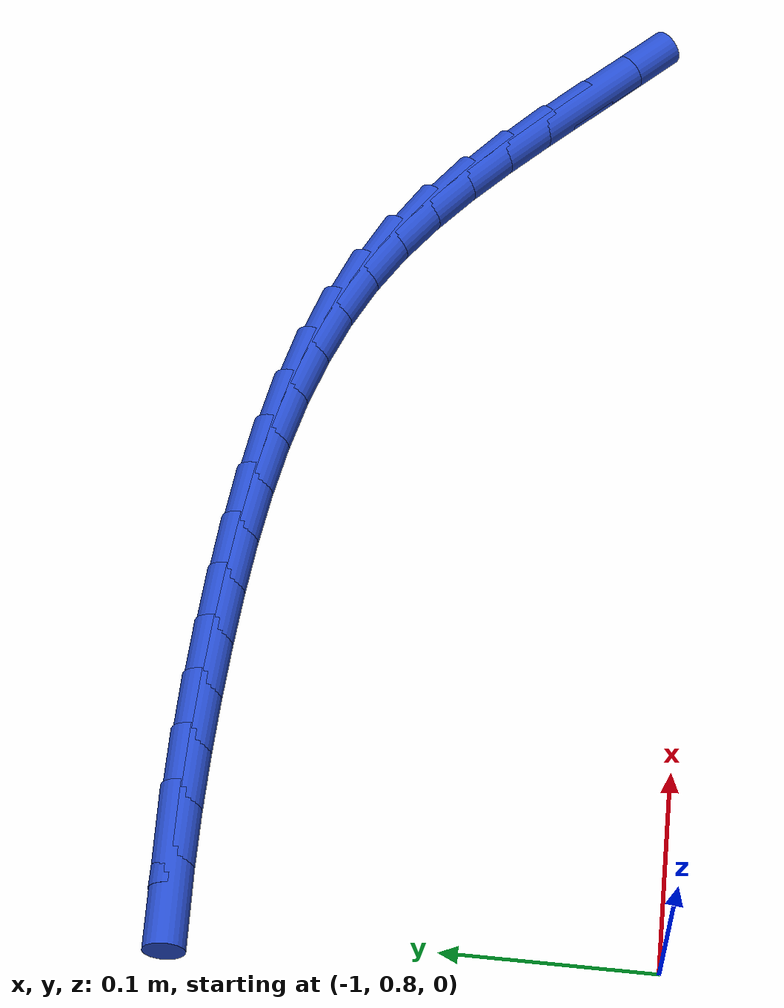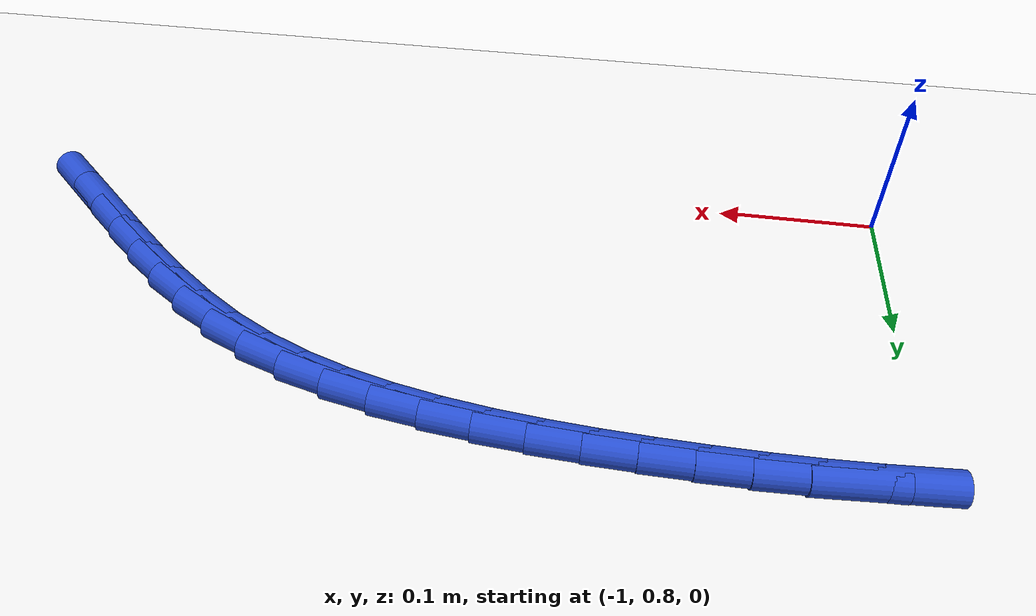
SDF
<sdf version="1.6">
 <world name="default">
  <model name="ground_plane">
   <static>1</static>
   <link name="link">
    <collision name="collision">
     <geometry><plane><normal>0 0 1</normal><size>100 100</size></plane></geometry>
     <surface><friction><ode><mu>100</mu><mu2>50</mu2></ode></friction></surface>
    </collision>
    <visual name="visual">
     <cast_shadows>0</cast_shadows>
     <geometry><plane><normal>0 0 1</normal><size>100 100</size></plane></geometry>
     <material>
      <script><uri>file://media/materials/scripts/gazebo.material</uri><name>Gazebo/WhiteGlow</name></script>
     </material>
    </visual>
   </link>
  </model>
  <model name="line">
   <link name="link_36">
    <pose>-0.47780256200934385 0.8533357026754125 0.01 0 1.57 -0.7631692323247999</pose>
    <collision name="collision">
     <geometry><cylinder><radius>0.01</radius><length>0.08</length></cylinder></geometry>
    </collision>
    <visual name="visual">
     <material>
      <script><name>Gazebo/Blue</name><uri>file://media/materials/scripts/gazebo.material</uri></script>
     </material>
     <geometry><cylinder><radius>0.01</radius><length>0.08</length></cylinder></geometry>
    </visual>
   </link>
   <link name="link_37">
    <pose>-0.49897459717535686 0.8735867943185851 0.01 0 1.57 -0.7633388351855224</pose>
    <collision name="collision">
     <geometry><cylinder><radius>0.01</radius><length>0.08</length></cylinder></geometry>
    </collision>
    <visual name="visual">
     <material>
      <script><name>Gazebo/Blue</name><uri>file://media/materials/scripts/gazebo.material</uri></script>
     </material>
     <geometry><cylinder><radius>0.01</radius><length>0.08</length></cylinder></geometry>
    </visual>
   </link>
   <link name="link_38">
    <pose>-0.5200195582451452 0.8937231752678623 0.01 0 1.57 -0.7472675693725204</pose>
    <collision name="collision">
     <geometry><cylinder><radius>0.01</radius><length>0.08</length></cylinder></geometry>
    </collision>
    <visual name="visual">
     <material>
      <script><name>Gazebo/Blue</name><uri>file://media/materials/scripts/gazebo.material</uri></script>
     </material>
     <geometry><cylinder><radius>0.01</radius><length>0.08</length></cylinder></geometry>
    </visual>
   </link>
   <link name="link_39">
    <pose>-0.5412015991345507 0.9133484542560212 0.01 0 1.57 -0.7144155490018477</pose>
    <collision name="collision">
     <geometry><cylinder><radius>0.01</radius><length>0.08</length></cylinder></geometry>
    </collision>
    <visual name="visual">
     <material>
      <script><name>Gazebo/Blue</name><uri>file://media/materials/scripts/gazebo.material</uri></script>
     </material>
     <geometry><cylinder><radius>0.01</radius><length>0.08</length></cylinder></geometry>
    </visual>
   </link>
   <link name="link_40">
    <pose>-0.5627848737594149 0.9320662400158399 0.01 0 1.57 -0.6640992526576575</pose>
    <collision name="collision">
     <geometry><cylinder><radius>0.01</radius><length>0.08</length></cylinder></geometry>
    </collision>
    <visual name="visual">
     <material>
      <script><name>Gazebo/Blue</name><uri>file://media/materials/scripts/gazebo.material</uri></script>
     </material>
     <geometry><cylinder><radius>0.01</radius><length>0.08</length></cylinder></geometry>
    </visual>
   </link>
   <link name="link_41">
    <pose>-0.5850335360355793 0.9494801412800963 0.01 0 1.57 -0.5957723991119743</pose>
    <collision name="collision">
     <geometry><cylinder><radius>0.01</radius><length>0.08</length></cylinder></geometry>
    </collision>
    <visual name="visual">
     <material>
      <script><name>Gazebo/Blue</name><uri>file://media/materials/scripts/gazebo.material</uri></script>
     </material>
     <geometry><cylinder><radius>0.01</radius><length>0.08</length></cylinder></geometry>
    </visual>
   </link>
   <link name="link_42">
    <pose>-0.6082117398788853 0.9651937667815672 0.01 0 1.57 -0.5097018519666382</pose>
    <collision name="collision">
     <geometry><cylinder><radius>0.01</radius><length>0.08</length></cylinder></geometry>
    </collision>
    <visual name="visual">
     <material>
      <script><name>Gazebo/Blue</name><uri>file://media/materials/scripts/gazebo.material</uri></script>
     </material>
     <geometry><cylinder><radius>0.01</radius><length>0.08</length></cylinder></geometry>
    </visual>
   </link>
   <link name="link_43">
    <pose>-0.6325804593131206 0.9788150852497046 0.01 0 1.57 -0.41726505626515326</pose>
    <collision name="collision">
     <geometry><cylinder><radius>0.01</radius><length>0.08</length></cylinder></geometry>
    </collision>
    <visual name="visual">
     <material>
      <script><name>Gazebo/Blue</name><uri>file://media/materials/scripts/gazebo.material</uri></script>
     </material>
     <geometry><cylinder><radius>0.01</radius><length>0.08</length></cylinder></geometry>
    </visual>
   </link>
   <link name="link_44">
    <pose>-0.6582303542764387 0.9901855855568369 0.01 0 1.57 -0.3346343525376232</pose>
    <collision name="collision">
     <geometry><cylinder><radius>0.01</radius><length>0.08</length></cylinder></geometry>
    </collision>
    <visual name="visual">
     <material>
      <script><name>Gazebo/Blue</name><uri>file://media/materials/scripts/gazebo.material</uri></script>
     </material>
     <geometry><cylinder><radius>0.01</radius><length>0.08</length></cylinder></geometry>
    </visual>
   </link>
   <link name="link_45">
    <pose>-0.6849992449645556 0.9994934288576187 0.01 0 1.57 -0.26307403307249666</pose>
    <collision name="collision">
     <geometry><cylinder><radius>0.01</radius><length>0.08</length></cylinder></geometry>
    </collision>
    <visual name="visual">
     <material>
      <script><name>Gazebo/Blue</name><uri>file://media/materials/scripts/gazebo.material</uri></script>
     </material>
     <geometry><cylinder><radius>0.01</radius><length>0.08</length></cylinder></geometry>
    </visual>
   </link>
   <link name="link_46">
    <pose>-0.7127044545278166 1.006954880106492 0.01 0 1.57 -0.20210618442431727</pose>
    <collision name="collision">
     <geometry><cylinder><radius>0.01</radius><length>0.08</length></cylinder></geometry>
    </collision>
    <visual name="visual">
     <material>
      <script><name>Gazebo/Blue</name><uri>file://media/materials/scripts/gazebo.material</uri></script>
     </material>
     <geometry><cylinder><radius>0.01</radius><length>0.08</length></cylinder></geometry>
    </visual>
   </link>
   <link name="link_47">
    <pose>-0.741163306116567 1.0127862042579001 0.01 0 1.57 -0.15101134307420294</pose>
    <collision name="collision">
     <geometry><cylinder><radius>0.01</radius><length>0.08</length></cylinder></geometry>
    </collision>
    <visual name="visual">
     <material>
      <script><name>Gazebo/Blue</name><uri>file://media/materials/scripts/gazebo.material</uri></script>
     </material>
     <geometry><cylinder><radius>0.01</radius><length>0.08</length></cylinder></geometry>
    </visual>
   </link>
   <link name="link_48">
    <pose>-0.7701931228811515 1.017203666266285 0.01 0 1.57 -0.10901785737317916</pose>
    <collision name="collision">
     <geometry><cylinder><radius>0.01</radius><length>0.08</length></cylinder></geometry>
    </collision>
    <visual name="visual">
     <material>
      <script><name>Gazebo/Blue</name><uri>file://media/materials/scripts/gazebo.material</uri></script>
     </material>
     <geometry><cylinder><radius>0.01</radius><length>0.08</length></cylinder></geometry>
    </visual>
   </link>
   <link name="link_49">
    <pose>-0.7996112279719153 1.0204235310860883 0.01 0 1.57 -0.075422215549036</pose>
    <collision name="collision">
     <geometry><cylinder><radius>0.01</radius><length>0.08</length></cylinder></geometry>
    </collision>
    <visual name="visual">
     <material>
      <script><name>Gazebo/Blue</name><uri>file://media/materials/scripts/gazebo.material</uri></script>
     </material>
     <geometry><cylinder><radius>0.01</radius><length>0.08</length></cylinder></geometry>
    </visual>
   </link>
   <link name="link_50">
    <pose>-0.8292349445392038 1.0226620636717534 0.01 0 1.57 -0.049660039171751005</pose>
    <collision name="collision">
     <geometry><cylinder><radius>0.01</radius><length>0.08</length></cylinder></geometry>
    </collision>
    <visual name="visual">
     <material>
      <script><name>Gazebo/Blue</name><uri>file://media/materials/scripts/gazebo.material</uri></script>
     </material>
     <geometry><cylinder><radius>0.01</radius><length>0.08</length></cylinder></geometry>
    </visual>
   </link>
   <link name="link_51">
    <pose>-0.8588815957333616 1.0241355289777219 0.01 0 1.57 -0.03040756893025305</pose>
    <collision name="collision">
     <geometry><cylinder><radius>0.01</radius><length>0.08</length></cylinder></geometry>
    </collision>
    <visual name="visual">
     <material>
      <script><name>Gazebo/Blue</name><uri>file://media/materials/scripts/gazebo.material</uri></script>
     </material>
     <geometry><cylinder><radius>0.01</radius><length>0.08</length></cylinder></geometry>
    </visual>
   </link>
   <link name="link_52">
    <pose>-0.888384982638496 1.0250329318513889 0.01 0 1.57 -0.011195536878011326</pose>
    <collision name="collision">
     <geometry><cylinder><radius>0.01</radius><length>0.08</length></cylinder></geometry>
    </collision>
    <visual name="visual">
     <material>
      <script><name>Gazebo/Blue</name><uri>file://media/materials/scripts/gazebo.material</uri></script>
     </material>
     <geometry><cylinder><radius>0.01</radius><length>0.08</length></cylinder></geometry>
    </visual>
   </link>
   <link name="link_53">
    <pose>-0.9176890750583393 1.0253610206064196 0.01 0 1.57 0.010627564616894666</pose>
    <collision name="collision">
     <geometry><cylinder><radius>0.01</radius><length>0.08</length></cylinder></geometry>
    </collision>
    <visual name="visual">
     <material>
      <script><name>Gazebo/Blue</name><uri>file://media/materials/scripts/gazebo.material</uri></script>
     </material>
     <geometry><cylinder><radius>0.01</radius><length>0.08</length></cylinder></geometry>
    </visual>
   </link>
   <link name="link_54">
    <pose>-0.9467830162954546 1.0250518112246432 0.01 0 1.57 0.03512964764408823</pose>
    <collision name="collision">
     <geometry><cylinder><radius>0.01</radius><length>0.08</length></cylinder></geometry>
    </collision>
    <visual name="visual">
     <material>
      <script><name>Gazebo/Blue</name><uri>file://media/materials/scripts/gazebo.material</uri></script>
     </material>
     <geometry><cylinder><radius>0.01</radius><length>0.08</length></cylinder></geometry>
    </visual>
   </link>
   <link name="link_55">
    <pose>-0.9756560866892376 1.0240370929823568 0.01 0 1.57 0.06236126289444396</pose>
    <collision name="collision">
     <geometry><cylinder><radius>0.01</radius><length>0.08</length></cylinder></geometry>
    </collision>
    <visual name="visual">
     <material>
      <script><name>Gazebo/Blue</name><uri>file://media/materials/scripts/gazebo.material</uri></script>
     </material>
     <geometry><cylinder><radius>0.01</radius><length>0.08</length></cylinder></geometry>
    </visual>
   </link>
  </model>
 </world>
</sdf>
